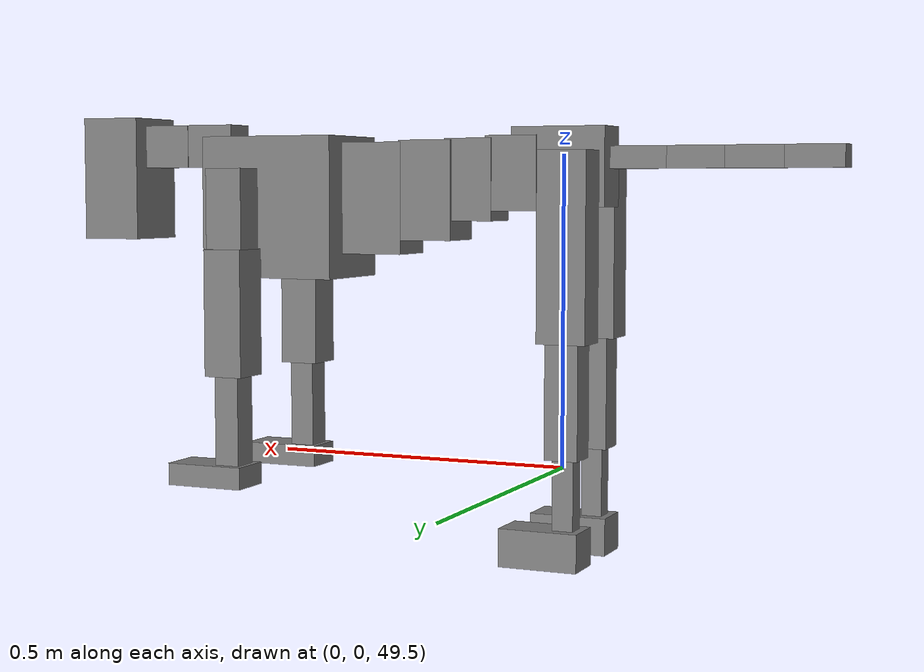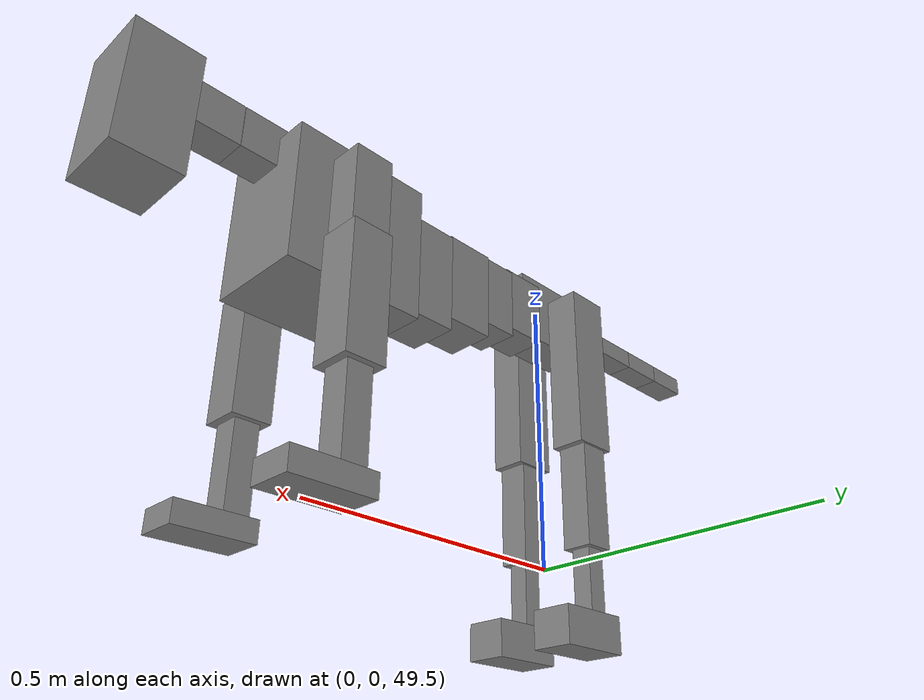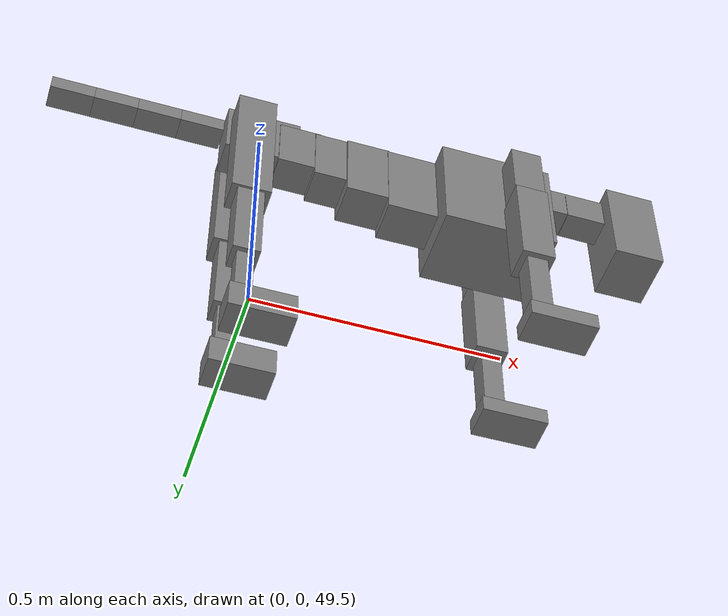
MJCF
<mujoco model="dog">

    <default>
        <joint armature="0.02" stiffness="1" damping="0.2" limited="true"/>
        <geom condim="3" friction="1 0.05 0.05" margin="0.01"/>
        <motor ctrllimited="true" ctrlrange="-1.0 1.0" forcelimited="true" gear="50"/>
    </default>

    <compiler inertiafromgeom="true" angle="radian"/>

    <option timestep="0.016" iterations="50" tolerance="1e-10" solver="Newton" jacobian="dense" cone="pyramidal"/>

    <size nconmax="20000" njmax="60000" nstack="5000000"/>
    <visual>
        <map force="0.1" zfar="30"/>
        <rgba haze="0.15 0.25 0.35 1"/>
        <quality shadowsize="2048"/>
        <global offwidth="800" offheight="800"/>
    </visual>

    <asset>
        <texture type="skybox" builtin="gradient" rgb1="0.3 0.5 0.7" rgb2="0 0 0" width="512" height="512"/>
        <texture name="texplane" type="2d" builtin="checker" rgb1=".2 .3 .4" rgb2=".1 0.15 0.2" width="512" height="512"
                 mark="cross" markrgb=".8 .8 .8"/>
        <texture name="texgeom" type="cube" builtin="flat" mark="cross" width="127" height="1278" rgb1="0.8 0.6 0.4"
                 rgb2="0.8 0.6 0.4" markrgb="1 1 1" random="0.01"/>

        <material name="matplane" reflectance="0.3" texture="texplane" texrepeat="1 1" texuniform="true"/>
        <material name="matgeom" texture="texgeom" texuniform="true" rgba="0.8 0.6 .4 1"/>
    </asset>

    <worldbody>
        <geom name="floor" pos="0 0 0" size="0 0 .25" type="plane" material="matplane" condim="3"/>

        <light directional="false" diffuse=".2 .2 .2" specular="0 0 0" pos="0 0 5" dir="0 0 -1" castshadow="false"/>
        <light mode="targetbodycom" target="torso" directional="false" diffuse=".8 .8 .8" specular="0.3 0.3 0.3"
               pos="0 0 4.0" dir="0 0 -1"/>

        <body name="root" pos="0 0 50">
            <freejoint name="root_1"/>
            <geom type="box" pos="0 0 -0.02" size="0.0774  0.0358  0.063" density="2030"/>

            <body name="spine1" pos="0.054 0 0">
                <joint name="spine1_y" axis="0 1 0" range="0 0.7" limited="true"/>
                <geom type="box" pos="0.02375 0 -0.03" size="0.04375  0.0375  0.05985" density="2030"/>

                <body name="spine2" pos="0.0612 0 0">
                    <joint name="spine2_y" axis="0 1 0" range="-0.15 0.15" limited="true"/>
                    <geom type="box" pos="0.03555  0  -0.04" size="0.04055  0.039  0.06615" density="2030"/>

                    <body name="spine3" pos="0.0730 0 0">
                        <joint name="spine3_y" axis="0 1 0" range="-0.15 0.15" limited="true"/>
                        <geom type="box" pos="0.03555  0  -0.057" size="0.04555  0.0445  0.081" density="2030"/>

                        <body name="spine4" pos="0.0780 0 0">
                            <joint name="spine4_y" axis="0 1 0" range="-0.15 0.15" limited="true"/>
                            <geom type="box" pos="0.05265  0  -0.07" size="0.05265  0.045  0.09135" density="2030"/>

                            <body name="torso" pos="0.1082 0 0">
                                <joint name="torso_y" axis="0 1 0" range="-0.15 0.15" limited="true"/>
                                <geom type="box" pos="0.11925  0  -0.085" size="0.11925  0.085  0.11745"
                                      density="2030"/>

                                <body name="neck1" pos="0.2160  0   0.0180">
                                    <joint name="neck1_y" axis="0 1 0" range="-1.2  -1" limited="true"/>
                                    <geom type="box" pos="0.0423  0  0" size="0.0423  0.03  0.036" density="2325"/>

                                    <body name="neck2" pos="0.0853  0  0">
                                        <joint name="neck2_y" axis="0 1 0" range="0.1  0" limited="true"/>
                                        <geom type="box" pos="0.0423  0  0" size="0.0423  0.03  0.036" density="2325"/>

                                        <body name="head" pos="0.0853  0  0">
                                            <joint name="head_y" axis="0 1 0" range="-0.3  -0.2" limited="true"/>
                                            <geom type="box" pos="0.0531  0  -0.055" size="0.0531  0.06  0.1044"
                                                  density="4030"/>

                                        </body>
                                    </body>
                                </body>

                                <body name="front_shoulder" pos="0.156  0   -0.0480">
                                    <joint name="front_shoulder_y" axis="0 1 0" range="-1 1.5" limited="true"/>
                                    <geom type="box" pos="0 0.13 -0.0526" size="0.0324  0.0277  0.0793" density="1158"/>
                                    <geom type="box" pos="0 -0.13 -0.0526" size="0.0324  0.0277  0.0793"
                                          density="1158"/>

                                    <body name="front_elbow" pos="0  0  -0.1052">
                                        <joint name="front_elbow_y" axis="0 1 0" range="-2 0" limited="true"/>
                                        <geom type="box" pos="0 0.13 -0.1042" size="0.0336  0.0344  0.1042"
                                              density="1081"/>
                                        <geom type="box" pos="0 -0.13 -0.1042" size="0.0336  0.0344  0.1042"
                                              density="1081"/>

                                        <body name="front_wrist" pos="0  0  -0.2084">
                                            <joint name="front_wrist_y" axis="0 1 0" range="-0.2 0" limited="true"/>
                                            <geom type="box" pos="0 0.13 -0.0810" size="0.0212  0.0236  0.0941"
                                                  density="1664"/>
                                            <geom type="box" pos="0 -0.13 -0.0810" size="0.0212  0.0236  0.0941"
                                                  density="1664"/>

                                            <body name="front_finger_end" pos="0  0  -0.1620">
                                                <joint name="front_finger_y" axis="0 1 0" range="-0.4 1"
                                                       limited="true"/>
                                                <geom type="box" pos="0.0367  0.13  -0.0033"
                                                      size="0.0674  0.0367  0.0183" density="1515"/>
                                                <geom type="box" pos="0.0367  -0.13  -0.0033"
                                                      size="0.0674  0.0367  0.0183" density="1515"/>

                                            </body>

                                        </body>
                                    </body>
                                </body>

                            </body>
                        </body>
                    </body>
                </body>
            </body>

            <body name="back_hip" pos="-0.03 0 -0.018">
                <joint name="back_hip_y" axis="0 1 0" range="-1.5 0.3" limited="true"/>
                <geom type="box" pos="0 0.07 -0.1263" size="0.0397  0.0311  0.1491" density="1154"/>
                <geom type="box" pos="0 -0.07 -0.1263" size="0.0397  0.0311  0.1491" density="1154"/>

                <body name="back_knee" pos="0  0  -0.2525">
                    <joint name="back_knee_y" axis="0 1 0" range="0 2.8" limited="true"/>
                    <geom type="box" pos="0 0.07 -0.0937" size="0.0270  0.0266  0.1093" density="1227"/>
                    <geom type="box" pos="0 -0.07 -0.0937" size="0.0270  0.0266  0.1093" density="1227"/>

                    <body name="back_ankle" pos="0  0  -0.1874">
                        <joint name="back_ankle_y" axis="0 1 0" range="-2.2 0" limited="true"/>
                        <geom type="box" pos="0 0.07 -0.0708" size="0.0171  0.0171  0.0821" density="1284"/>
                        <geom type="box" pos="0 -0.07 -0.0708" size="0.0171  0.0171  0.0821" density="1284"/>

                        <body name="back_toe_end" pos="0  0  -0.1416">
                            <joint name="back_toe_y" axis="0 1 0" range="-0.4 1" limited="true"/>
                            <geom type="box" pos="0.0350  0.07  -0.0155" size="0.0642  0.0350  0.0305" density="1515"/>
                            <geom type="box" pos="0.0350  -0.07  -0.0155" size="0.0642  0.0350  0.0305" density="1515"/>

                        </body>
                    </body>
                </body>
            </body>

            <body name="tail1" pos="-0.074 0 -0.006">
                <joint name="tail1_y" axis="0 1 0" range="-0.2 0.2" limited="true"/>
                <geom type="box" pos="-0.0536  0  0" size="0.045  0.025  0.0175" density="1587"/>

                <body name="tail2" pos="-0.09 0 0">
                    <joint name="tail2_y" axis="0 1 0" range="-0.2 0.2" limited="true"/>
                    <geom type="box" pos="-0.0536  0  0" size="0.045  0.025  0.0175" density="1587"/>

                    <body name="tail3" pos="-0.09 0 0">
                        <joint name="tail3_y" axis="0 1 0" range="-0.2 0.2" limited="true"/>
                        <geom type="box" pos="-0.0536  0  0" size="0.045  0.025  0.0175" density="1587"/>

                        <body name="tail4" pos="-0.09 0 0">
                            <joint name="tail4_y" axis="0 1 0" range="-0.2 0.2" limited="true"/>
                            <geom type="box" pos="-0.0536  0  0" size="0.045  0.025  0.0175" density="1587"/>

                        </body>
                    </body>
                </body>
            </body>
        </body>
    </worldbody>

    <actuator>
        <motor joint="spine1_y" forcerange="-150 150     "/>
        <motor joint="spine2_y" forcerange="-150 150     "/>
        <motor joint="spine3_y" forcerange="-150 150     "/>
        <motor joint="spine4_y" forcerange="-150 150     "/>
        <motor joint="torso_y" forcerange="-150 150     "/>
        <motor joint="neck1_y" forcerange="-100 100       "/>
        <motor joint="neck2_y" forcerange="-100 100       "/>
        <motor joint="head_y" forcerange="-150 150       "/>
        <motor joint="front_shoulder_y" forcerange="-147.58 137.18"/>
        <motor joint="front_elbow_y" forcerange="-160.63 189.20"/>
        <motor joint="front_wrist_y" forcerange="-54.31 134.35"/>
        <motor joint="front_finger_y" forcerange="-66.44 89.51"/>
        <motor joint="back_hip_y" forcerange="-390.72 223.98"/>
        <motor joint="back_knee_y" forcerange="-290.83 296.66"/>
        <motor joint="back_angle_y" forcerange="-98.83 74.48"/>
        <motor joint="back_toe_y" forcerange="-66.66 133.53"/>
        <motor joint="tail1_y" forcerange="-50 50     "/>
        <motor joint="tail2_y" forcerange="-50 50     "/>
        <motor joint="tail3_y" forcerange="-50 50     "/>
        <motor joint="tail4_y" forcerange="-50 50     "/>
    </actuator>
</mujoco>
